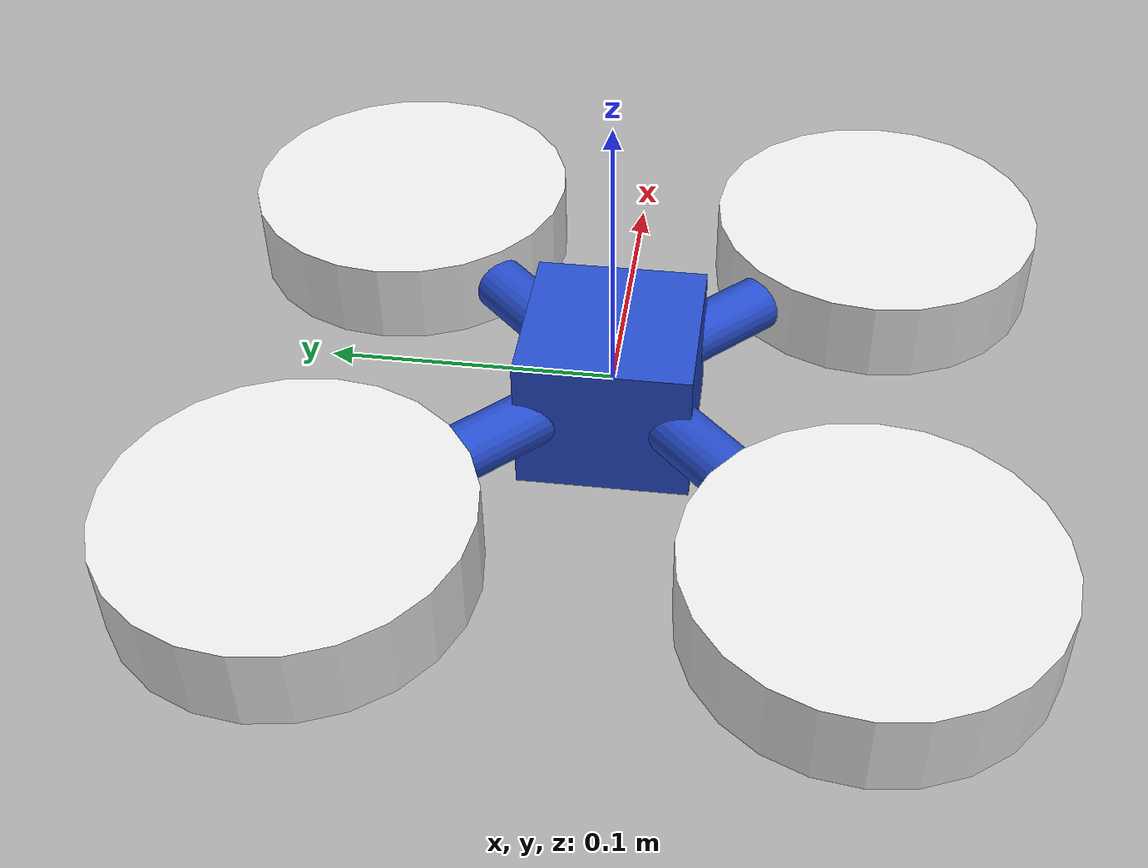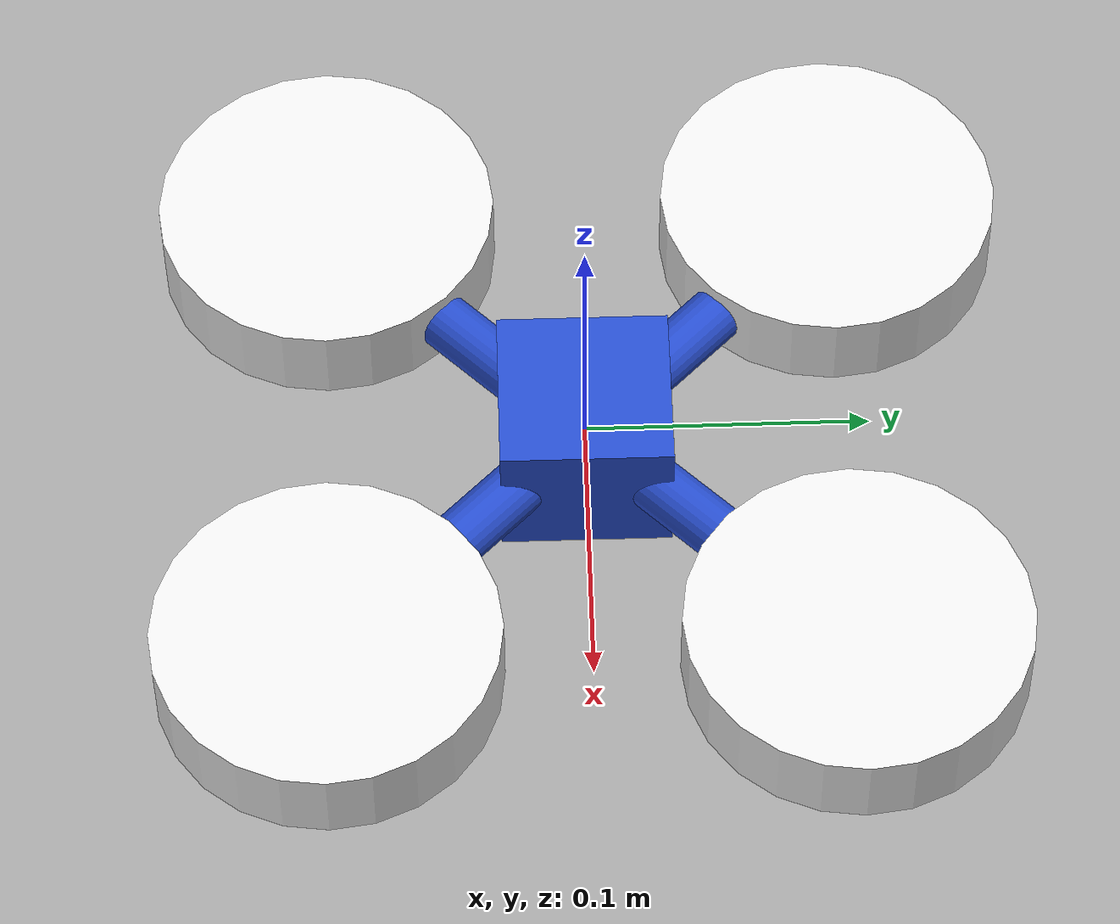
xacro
<robot xmlns:xacro="http://www.ros.org/wiki/xacro" name="example">

  <xacro:macro name="gazebo_material" params="ref color">
    <gazebo reference="${ref}">
      <material>Gazebo/${color}</material>
    </gazebo>
  </xacro:macro>

  <link name="base_origin">
    <visual>
      <origin xyz="0 0 0" rpy="0 0 0"/>
      <geometry>
        <box size="0.01 0.01 0.01"/>
      </geometry>
    </visual>
    <inertial>
      <mass value="1e-5" />
      <origin xyz="0 0 0" rpy="0 0 0"/>
      <inertia ixx="1e-6" ixy="0" ixz="0" iyy="1e-6" iyz="0" izz="1e-6" />
    </inertial>
  </link>

  <link name="base_link">
    <visual>
      <origin xyz="0 0 0" rpy="0 0 0"/>
      <geometry>
        <box size="0.06 0.06 0.05"/>
      </geometry>
    </visual>

    <inertial>
      <mass value="1e-5" />
      <origin xyz="0 0 0" rpy="0 0 0"/>
      <inertia ixx="1e-6" ixy="0" ixz="0" iyy="1e-6" iyz="0" izz="1e-6" />
    </inertial>
  </link>

  <joint name="base_link_joint" type="fixed">
    <origin xyz="0 0 0" rpy="0 0 0"/>
    <parent link="base_origin"/>
    <child link="base_link"/>
  </joint>

  <link name="left_arm_link">
    <visual>
      <origin xyz="0 0 0" rpy="0 0 0"/>
      <geometry>
        <cylinder radius="0.01" length="0.2"/>
      </geometry>
    </visual>

    <inertial>
      <mass value="1e-5" />
      <origin xyz="0 0 0" rpy="0 0 0"/>
      <inertia ixx="1e-6" ixy="0" ixz="0" iyy="1e-6" iyz="0" izz="1e-6" />
    </inertial>
  </link>

  <joint name="left_arm_joint" type="fixed">
    <origin xyz="0 0 0" rpy="1.57 0 0.785"/>
    <parent link="base_link"/>
    <child link="left_arm_link"/>
  </joint>

  <link name="right_arm_link">
    <visual>
      <origin xyz="0 0 0" rpy="0 0 0"/>
      <geometry>
        <cylinder radius="0.01" length="0.2"/>
      </geometry>
    </visual>

    <inertial>
      <mass value="1e-5" />
      <origin xyz="0 0 0" rpy="0 0 0"/>
      <inertia ixx="1e-6" ixy="0" ixz="0" iyy="1e-6" iyz="0" izz="1e-6" />
    </inertial>
  </link>

  <joint name="right_arm_joint" type="fixed">
    <origin xyz="0 0 0" rpy="1.57 0 -0.785"/>
    <parent link="base_link"/>
    <child link="right_arm_link"/>
  </joint>

  <link name="left_front_rotor">
    <visual>
      <origin xyz="0 0 0" rpy="0 0 0"/>
      <geometry>
        <cylinder radius="0.06" length="0.03"/>
      </geometry>
    </visual>

    <inertial>
      <mass value="1e-5" />
      <origin xyz="0 0 0" rpy="0 0 0"/>
      <inertia ixx="1e-6" ixy="0" ixz="0" iyy="1e-6" iyz="0" izz="1e-6" />
    </inertial>
  </link>

  <joint name="left_front_joint" type="fixed">
    <origin xyz="0.09 -0.09 0" rpy="0 0 0"/>
    <parent link="base_link"/>
    <child link="left_front_rotor"/>
  </joint>

  <link name="right_front_rotor">
    <visual>
      <origin xyz="0 0 0" rpy="0 0 0"/>
      <geometry>
        <cylinder radius="0.06" length="0.03"/>
      </geometry>
    </visual>

    <inertial>
      <mass value="1e-5" />
      <origin xyz="0 0 0" rpy="0 0 0"/>
      <inertia ixx="1e-6" ixy="0" ixz="0" iyy="1e-6" iyz="0" izz="1e-6" />
    </inertial>
  </link>

  <joint name="rigth_front_joint" type="fixed">
    <origin xyz="0.09 0.09 0" rpy="0 0 0"/>
    <parent link="base_link"/>
    <child link="right_front_rotor"/>
  </joint>

  <link name="left_rear_rotor">
    <visual>
      <origin xyz="0 0 0" rpy="0 0 0"/>
      <geometry>
        <cylinder radius="0.06" length="0.03"/>
      </geometry>
    </visual>

    <inertial>
      <mass value="1e-5" />
      <origin xyz="0 0 0" rpy="0 0 0"/>
      <inertia ixx="1e-6" ixy="0" ixz="0" iyy="1e-6" iyz="0" izz="1e-6" />
    </inertial>
  </link>

  <joint name="left_rear_joint" type="fixed">
    <origin xyz="-0.09 -0.09 0" rpy="0 0 0"/>
    <parent link="base_link"/>
    <child link="left_rear_rotor"/>
  </joint>

  <link name="right_rear_rotor">
    <visual>
      <origin xyz="0 0 0" rpy="0 0 0"/>
      <geometry>
        <cylinder radius="0.06" length="0.03"/>
      </geometry>
    </visual>

    <inertial>
      <mass value="1e-5" />
      <origin xyz="0 0 0" rpy="0 0 0"/>
      <inertia ixx="1e-6" ixy="0" ixz="0" iyy="1e-6" iyz="0" izz="1e-6" />
    </inertial>
  </link>

  <joint name="right_rear_joint" type="fixed">
    <origin xyz="-0.09 0.09 0" rpy="0 0 0"/>
    <parent link="base_link"/>
    <child link="right_rear_rotor"/>
  </joint>

  <xacro:gazebo_material ref="base_link"         color="Blue" />
  <xacro:gazebo_material ref="left_arm_link"     color="Blue" />
  <xacro:gazebo_material ref="right_arm_link"     color="Blue" />
  <xacro:gazebo_material ref="left_front_rotor"  color="White" />
  <xacro:gazebo_material ref="left_rear_rotor"   color="White" />
  <xacro:gazebo_material ref="right_front_rotor" color="White" />
  <xacro:gazebo_material ref="right_rear_rotor"  color="White" />

</robot>
